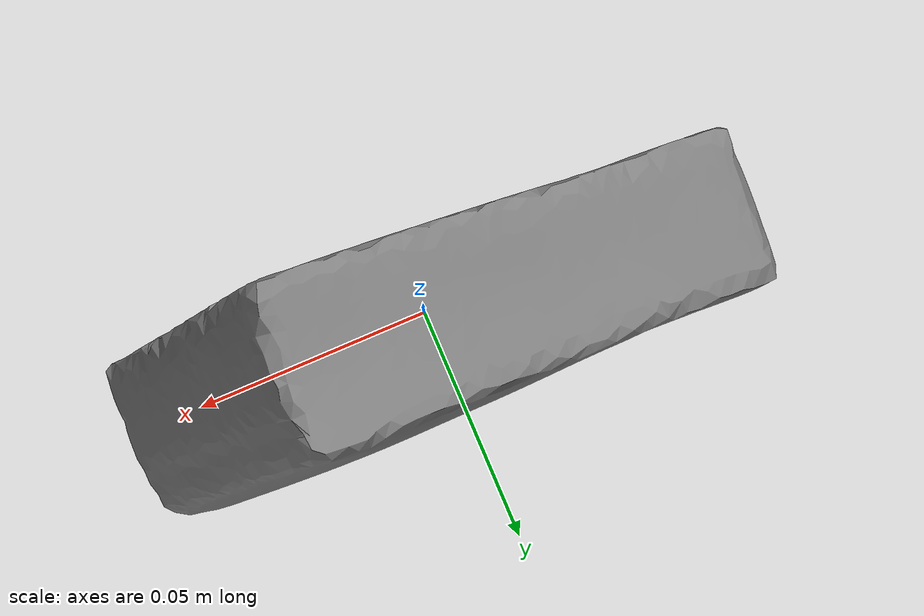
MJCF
<mujoco model="pudding_box">
    <compiler angle="radian" meshdir="pudding_box/stl" autolimits="true" />
    <default />
    <asset>
        <mesh name="pudding_box" file="pudding_box.stl" />
    </asset>
    <worldbody>
        <body name="pudding_box">
            <geom type="mesh" mesh="pudding_box" />
        </body>
    </worldbody>
    <equality />
    <contact />
</mujoco>
